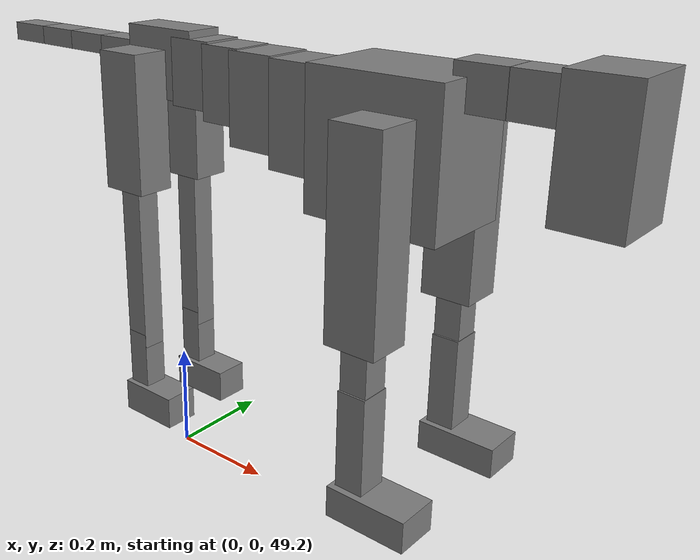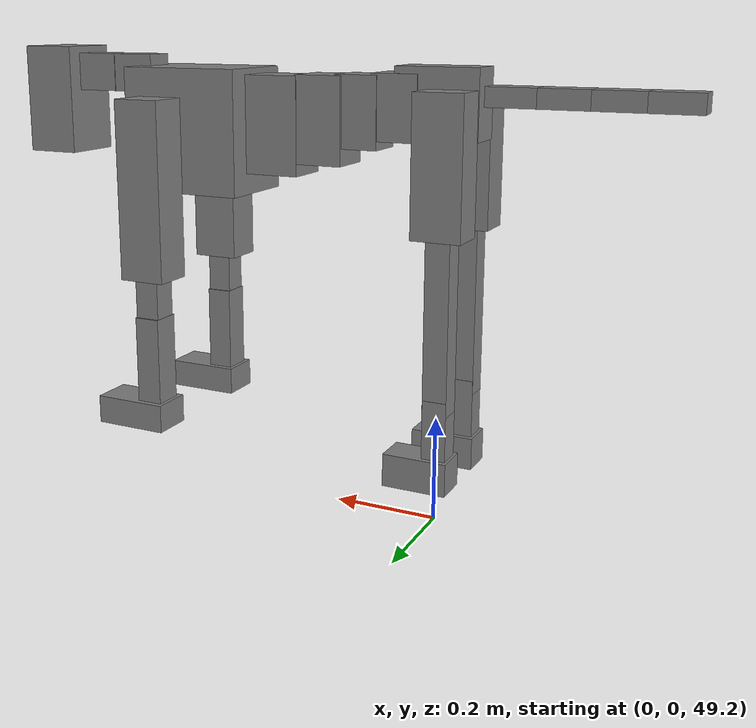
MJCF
<mujoco model="dog">

    <default>
        <joint armature="0.02" stiffness="1" damping="0.2" limited="true"/>
        <geom condim="3" friction="1 0.05 0.05" margin="0.01"/>
        <motor ctrllimited="true" ctrlrange="-1.0 1.0" forcelimited="true" gear="50"/>
    </default>

    <compiler inertiafromgeom="true" angle="radian"/>

    <option timestep="0.016" iterations="50" tolerance="1e-10" solver="Newton" jacobian="dense" cone="pyramidal"/>

    <size nconmax="20000" njmax="60000" nstack="5000000"/>
    <visual>
        <map force="0.1" zfar="30"/>
        <rgba haze="0.15 0.25 0.35 1"/>
        <quality shadowsize="2048"/>
        <global offwidth="800" offheight="800"/>
    </visual>

    <asset>
        <texture type="skybox" builtin="gradient" rgb1="0.3 0.5 0.7" rgb2="0 0 0" width="512" height="512"/>
        <texture name="texplane" type="2d" builtin="checker" rgb1=".2 .3 .4" rgb2=".1 0.15 0.2" width="512" height="512"
                 mark="cross" markrgb=".8 .8 .8"/>
        <texture name="texgeom" type="cube" builtin="flat" mark="cross" width="127" height="1278" rgb1="0.8 0.6 0.4"
                 rgb2="0.8 0.6 0.4" markrgb="1 1 1" random="0.01"/>

        <material name="matplane" reflectance="0.3" texture="texplane" texrepeat="1 1" texuniform="true"/>
        <material name="matgeom" texture="texgeom" texuniform="true" rgba="0.8 0.6 .4 1"/>
    </asset>

    <worldbody>
        <geom name="floor" pos="0 0 0" size="0 0 .25" type="plane" material="matplane" condim="3"/>

        <light directional="false" diffuse=".2 .2 .2" specular="0 0 0" pos="0 0 5" dir="0 0 -1" castshadow="false"/>
        <light mode="targetbodycom" target="torso" directional="false" diffuse=".8 .8 .8" specular="0.3 0.3 0.3"
               pos="0 0 4.0" dir="0 0 -1"/>

        <body name="root" pos="0 0 50">
            <freejoint name="root_1"/>
            <geom type="box" pos="0 0 -0.02" size="0.0774  0.0358  0.063" density="2030"/>

            <body name="spine1" pos="0.054 0 0">
                <joint name="spine1_y" axis="0 1 0" range="0 0.7" limited="true"/>
                <geom type="box" pos="0.02375 0 -0.03" size="0.04375  0.0375  0.05985" density="2030"/>

                <body name="spine2" pos="0.0612 0 0">
                    <joint name="spine2_y" axis="0 1 0" range="-0.15 0.15" limited="true"/>
                    <geom type="box" pos="0.03555  0  -0.04" size="0.04055  0.039  0.06615" density="2030"/>

                    <body name="spine3" pos="0.0730 0 0">
                        <joint name="spine3_y" axis="0 1 0" range="-0.15 0.15" limited="true"/>
                        <geom type="box" pos="0.03555  0  -0.057" size="0.04555  0.0445  0.081" density="2030"/>

                        <body name="spine4" pos="0.0780 0 0">
                            <joint name="spine4_y" axis="0 1 0" range="-0.15 0.15" limited="true"/>
                            <geom type="box" pos="0.05265  0  -0.07" size="0.05265  0.045  0.09135" density="2030"/>

                            <body name="torso" pos="0.1082 0 0">
                                <joint name="torso_y" axis="0 1 0" range="-0.15 0.15" limited="true"/>
                                <geom type="box" pos="0.11925  0  -0.085" size="0.11925  0.085  0.11745"
                                      density="2030"/>

                                <body name="neck1" pos="0.2160  0   0.0180">
                                    <joint name="neck1_y" axis="0 1 0" range="-1.2  -1" limited="true"/>
                                    <geom type="box" pos="0.0423  0  0" size="0.0423  0.03  0.036" density="2325"/>

                                    <body name="neck2" pos="0.0853  0  0">
                                        <joint name="neck2_y" axis="0 1 0" range="0.1  0" limited="true"/>
                                        <geom type="box" pos="0.0423  0  0" size="0.0423  0.03  0.036" density="2325"/>

                                        <body name="head" pos="0.0853  0  0">
                                            <joint name="head_y" axis="0 1 0" range="-0.3  -0.2" limited="true"/>
                                            <geom type="box" pos="0.0531  0  -0.055" size="0.0531  0.06  0.1044"
                                                  density="4030"/>

                                        </body>
                                    </body>
                                </body>

                                <body name="front_shoulder" pos="0.156  0   -0.0480">
                                    <joint name="front_shoulder_y" axis="0 1 0" range="-1 1.5" limited="true"/>
                                    <geom type="box" pos="0 0.13 -0.1430" size="0.0454  0.0388  0.1696" density="1158"/>
                                    <geom type="box" pos="0 -0.13 -0.1430" size="0.0454  0.0388  0.1696"
                                          density="1158"/>

                                    <body name="front_elbow" pos="0  0  -0.2859">
                                        <joint name="front_elbow_y" axis="0 1 0" range="-2 0" limited="true"/>
                                        <geom type="box" pos="0 0.13 -0.0572" size="0.0238  0.0243  0.0572"
                                              density="1081"/>
                                        <geom type="box" pos="0 -0.13 -0.0572" size="0.0238  0.0243  0.0572"
                                              density="1081"/>

                                        <body name="front_wrist" pos="0  0  -0.1143">
                                            <joint name="front_wrist_y" axis="0 1 0" range="-0.2 0" limited="true"/>
                                            <geom type="box" pos="0 0.13 -0.0840" size="0.0248  0.0276  0.0972"
                                                  density="1664"/>
                                            <geom type="box" pos="0 -0.13 -0.0840" size="0.0248  0.0276  0.0972"
                                                  density="1664"/>

                                            <body name="front_finger_end" pos="0  0  -0.1681">
                                                <joint name="front_finger_y" axis="0 1 0" range="-0.4 1"
                                                       limited="true"/>
                                                <geom type="box" pos="0.0391  0.13  -0.0119"
                                                      size="0.0716  0.0391  0.0269" density="1515"/>
                                                <geom type="box" pos="0.0391  -0.13  -0.0119"
                                                      size="0.0716  0.0391  0.0269" density="1515"/>

                                            </body>

                                        </body>
                                    </body>
                                </body>

                            </body>
                        </body>
                    </body>
                </body>
            </body>

            <body name="back_hip" pos="-0.03 0 -0.018">
                <joint name="back_hip_y" axis="0 1 0" range="-1.5 0.3" limited="true"/>
                <geom type="box" pos="0 0.07 -0.1031" size="0.0459  0.0360  0.1259" density="1154"/>
                <geom type="box" pos="0 -0.07 -0.1031" size="0.0459  0.0360  0.1259" density="1154"/>

                <body name="back_knee" pos="0  0  -0.2063">
                    <joint name="back_knee_y" axis="0 1 0" range="0 2.8" limited="true"/>
                    <geom type="box" pos="0 0.07 -0.1609" size="0.0225  0.0222  0.1764" density="1227"/>
                    <geom type="box" pos="0 -0.07 -0.1609" size="0.0225  0.0222  0.1764" density="1227"/>

                    <body name="back_ankle" pos="0  0  -0.3218">
                        <joint name="back_ankle_y" axis="0 1 0" range="-2.2 0" limited="true"/>
                        <geom type="box" pos="0 0.07 -0.0564" size="0.0223  0.0223  0.0677" density="1284"/>
                        <geom type="box" pos="0 -0.07 -0.0564" size="0.0223  0.0223  0.0677" density="1284"/>

                        <body name="back_toe_end" pos="0  0  -0.1128">
                            <joint name="back_toe_y" axis="0 1 0" range="-0.4 1" limited="true"/>
                            <geom type="box" pos="0.0327  0.07  -0.0155" size="0.0600  0.0327  0.0305" density="1515"/>
                            <geom type="box" pos="0.0327  -0.07  -0.0155" size="0.0600  0.0327  0.0305" density="1515"/>

                        </body>
                    </body>
                </body>
            </body>

            <body name="tail1" pos="-0.074 0 -0.006">
                <joint name="tail1_y" axis="0 1 0" range="-0.2 0.2" limited="true"/>
                <geom type="box" pos="-0.0536  0  0" size="0.045  0.025  0.0175" density="1587"/>

                <body name="tail2" pos="-0.09 0 0">
                    <joint name="tail2_y" axis="0 1 0" range="-0.2 0.2" limited="true"/>
                    <geom type="box" pos="-0.0536  0  0" size="0.045  0.025  0.0175" density="1587"/>

                    <body name="tail3" pos="-0.09 0 0">
                        <joint name="tail3_y" axis="0 1 0" range="-0.2 0.2" limited="true"/>
                        <geom type="box" pos="-0.0536  0  0" size="0.045  0.025  0.0175" density="1587"/>

                        <body name="tail4" pos="-0.09 0 0">
                            <joint name="tail4_y" axis="0 1 0" range="-0.2 0.2" limited="true"/>
                            <geom type="box" pos="-0.0536  0  0" size="0.045  0.025  0.0175" density="1587"/>

                        </body>
                    </body>
                </body>
            </body>
        </body>
    </worldbody>

    <actuator>
        <motor joint="spine1_y" forcerange="-150 150     "/>
        <motor joint="spine2_y" forcerange="-150 150     "/>
        <motor joint="spine3_y" forcerange="-150 150     "/>
        <motor joint="spine4_y" forcerange="-150 150     "/>
        <motor joint="torso_y" forcerange="-150 150     "/>
        <motor joint="neck1_y" forcerange="-100 100       "/>
        <motor joint="neck2_y" forcerange="-100 100       "/>
        <motor joint="head_y" forcerange="-150 150       "/>
        <motor joint="front_shoulder_y" forcerange="-162.01 196.59"/>
        <motor joint="front_elbow_y" forcerange="-109.80 166.97"/>
        <motor joint="front_wrist_y" forcerange="-77.13 143.52"/>
        <motor joint="front_finger_y" forcerange="-94.10 74.17"/>
        <motor joint="back_hip_y" forcerange="-295.72 383.97"/>
        <motor joint="back_knee_y" forcerange="-242.98 280.15"/>
        <motor joint="back_angle_y" forcerange="-187.30 68.80"/>
        <motor joint="back_toe_y" forcerange="-82.48 99.36"/>
        <motor joint="tail1_y" forcerange="-50 50     "/>
        <motor joint="tail2_y" forcerange="-50 50     "/>
        <motor joint="tail3_y" forcerange="-50 50     "/>
        <motor joint="tail4_y" forcerange="-50 50     "/>
    </actuator>
</mujoco>
